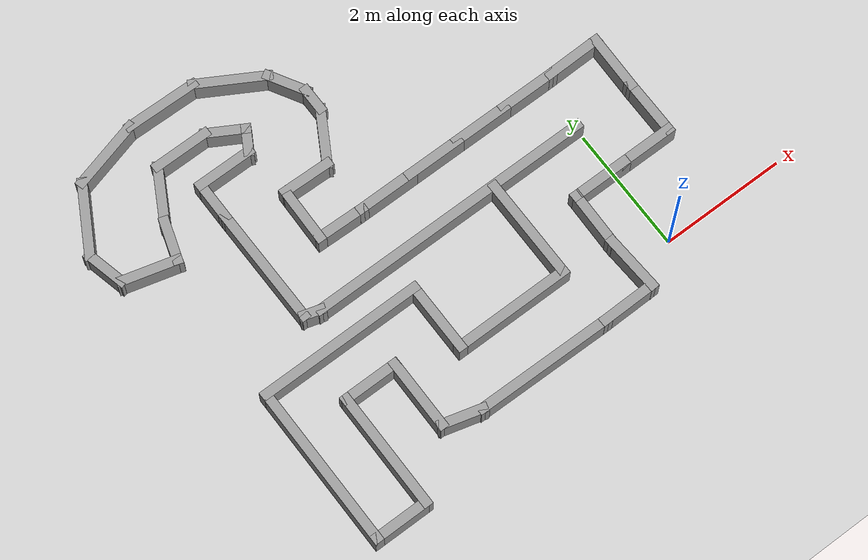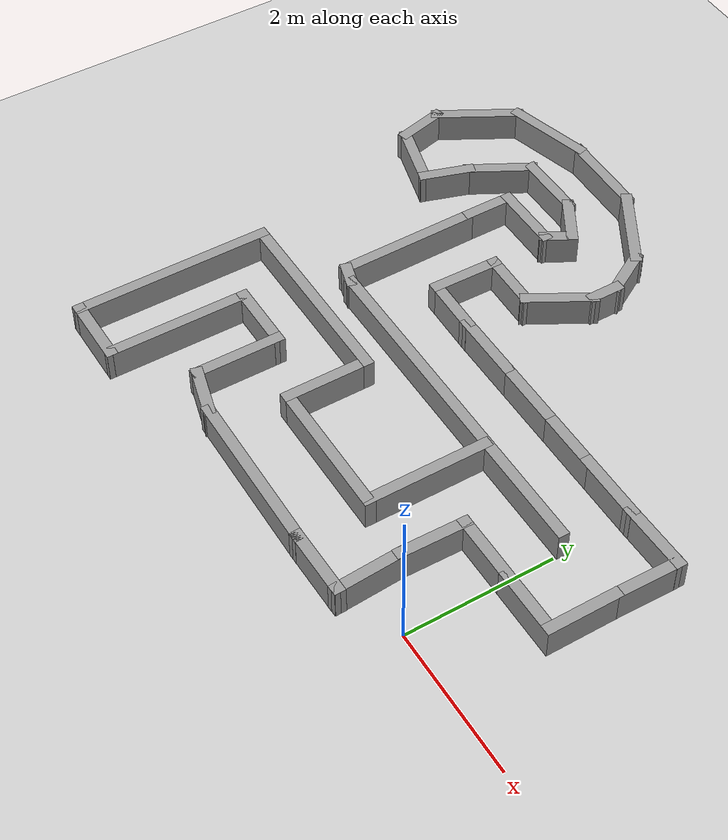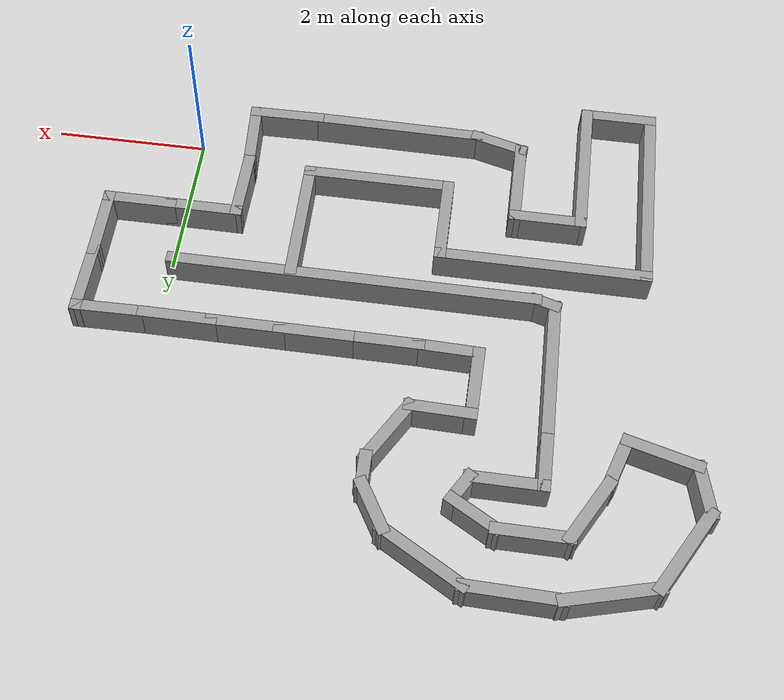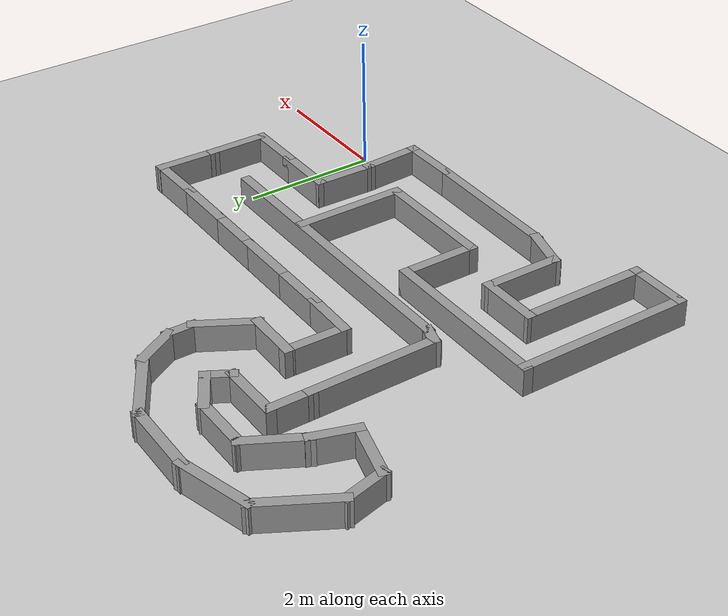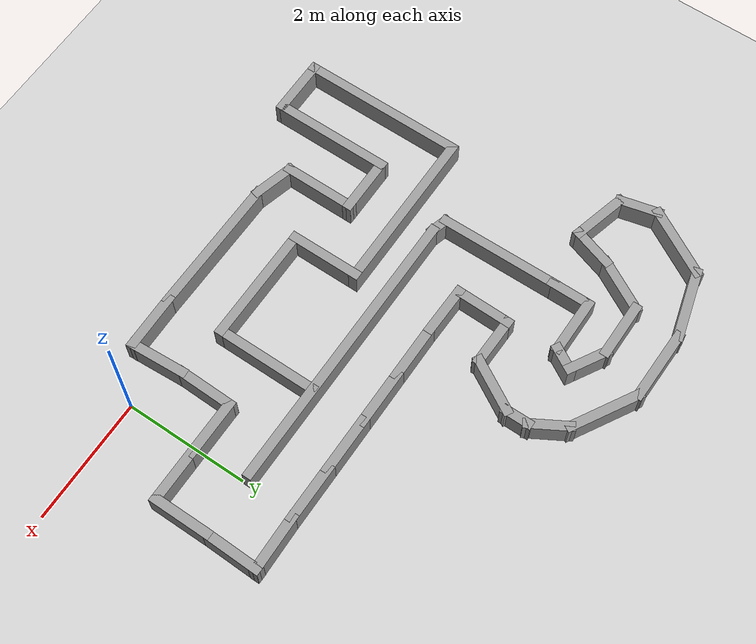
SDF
<sdf version="1.6">
 <world name="default">
  <scene><ambient>0.4 0.4 0.4 1</ambient><background>0.7 0.7 0.7 1</background><shadows>0</shadows></scene>
  <light name="sun" type="directional">
   <pose>0 0 10 0 -0 0</pose>
   <diffuse>0.8 0.8 0.8 1</diffuse>
   <specular>0.2 0.2 0.2 1</specular>
   <attenuation>
    <range>1000</range>
    <constant>0.9</constant>
    <linear>0.01</linear>
    <quadratic>0.001</quadratic>
   </attenuation>
   <direction>-0.5 0.1 -0.9</direction>
  </light>
  <model name="ground_plane">
   <static>1</static>
   <link name="link">
    <collision name="collision">
     <geometry><plane><normal>0 0 1</normal><size>100 100</size></plane></geometry>
     <surface>
      <contact><collide_bitmask>65535</collide_bitmask></contact>
      <friction><ode><mu>100</mu><mu2>50</mu2></ode></friction>
     </surface>
    </collision>
    <visual name="visual">
     <cast_shadows>0</cast_shadows>
     <geometry><plane><normal>0 0 1</normal><size>100 100</size></plane></geometry>
     <material>
      <script><uri>file://media/materials/scripts/gazebo.material</uri><name>Gazebo/Grey</name></script>
     </material>
    </visual>
   </link>
  </model>
  <physics name="default_physics" default="0" type="ode">
   <real_time_update_rate>1000</real_time_update_rate>
   <max_step_size>0.001</max_step_size>
   <real_time_factor>1</real_time_factor>
   <ode>
    <solver>
     <type>quick</type>
     <iters>150</iters>
     <precon_iters>0</precon_iters>
     <sor>1.4</sor>
     <use_dynamic_moi_rescaling>1</use_dynamic_moi_rescaling>
    </solver>
    <constraints>
     <cfm>1e-05</cfm>
     <erp>0.2</erp>
     <contact_max_correcting_vel>2000</contact_max_correcting_vel>
     <contact_surface_layer>0.01</contact_surface_layer>
    </constraints>
   </ode>
  </physics>
  <gravity>0 0 -9.8</gravity>
  <magnetic_field>6e-06 2.3e-05 -4.2e-05</magnetic_field>
  <atmosphere type="adiabatic"/>
  <audio><device>default</device></audio>
  <spherical_coordinates>
   <surface_model>EARTH_WGS84</surface_model>
   <latitude_deg>0</latitude_deg>
   <longitude_deg>0</longitude_deg>
   <elevation>0</elevation>
   <heading_deg>0</heading_deg>
  </spherical_coordinates>
  <model name="roberta_map1">
   <pose>-2.91784 2.49447 0 0 -0 0</pose>
   <link name="Wall_10">
    <collision name="Wall_10_Collision">
     <geometry><box><size>1.00119 0.15 0.4</size></box></geometry>
     <pose>0 0 0.2 0 -0 0</pose>
    </collision>
    <visual name="Wall_10_Visual">
     <pose>0 0 0.2 0 -0 0</pose>
     <geometry><box><size>1.00119 0.15 0.4</size></box></geometry>
     <material>
      <script><uri>file://media/materials/scripts/gazebo.material</uri><name>Gazebo/Grey</name></script>
      <ambient>1 1 1 1</ambient>
     </material>
     <meta><layer>0</layer></meta>
    </visual>
    <pose>2.20784 -2.50547 0 0 -0 1.62955</pose>
   </link>
   <link name="Wall_11">
    <collision name="Wall_11_Collision">
     <geometry><box><size>1 0.15 0.4</size></box></geometry>
     <pose>0 0 0.2 0 -0 0</pose>
    </collision>
    <visual name="Wall_11_Visual">
     <pose>0 0 0.2 0 -0 0</pose>
     <geometry><box><size>1 0.15 0.4</size></box></geometry>
     <material>
      <script><uri>file://media/materials/scripts/gazebo.material</uri><name>Gazebo/Grey</name></script>
      <ambient>1 1 1 1</ambient>
     </material>
     <meta><layer>0</layer></meta>
    </visual>
    <pose>2.19134 -1.65547 0 0 -0 1.5508</pose>
   </link>
   <link name="Wall_12">
    <collision name="Wall_12_Collision">
     <geometry><box><size>1.01672 0.15 0.4</size></box></geometry>
     <pose>0 0 0.2 0 -0 0</pose>
    </collision>
    <visual name="Wall_12_Visual">
     <pose>0 0 0.2 0 -0 0</pose>
     <geometry><box><size>1.01672 0.15 0.4</size></box></geometry>
     <material>
      <script><uri>file://media/materials/scripts/gazebo.material</uri><name>Gazebo/Grey</name></script>
      <ambient>1 1 1 1</ambient>
     </material>
     <meta><layer>0</layer></meta>
    </visual>
    <pose>2.63284 -1.23047 0 0 -0 0</pose>
   </link>
   <link name="Wall_13">
    <collision name="Wall_13_Collision">
     <geometry><box><size>0.967 0.15 0.4</size></box></geometry>
     <pose>0 0 0.2 0 -0 0</pose>
    </collision>
    <visual name="Wall_13_Visual">
     <pose>0 0 0.2 0 -0 0</pose>
     <geometry><box><size>0.967 0.15 0.4</size></box></geometry>
     <material>
      <script><uri>file://media/materials/scripts/gazebo.material</uri><name>Gazebo/Grey</name></script>
      <ambient>1 1 1 1</ambient>
     </material>
     <meta><layer>0</layer></meta>
    </visual>
    <pose>3.47434 -1.23047 0 0 -0 0</pose>
   </link>
   <link name="Wall_14">
    <collision name="Wall_14_Collision">
     <geometry><box><size>1.017 0.15 0.4</size></box></geometry>
     <pose>0 0 0.2 0 -0 0</pose>
    </collision>
    <visual name="Wall_14_Visual">
     <pose>0 0 0.2 0 -0 0</pose>
     <geometry><box><size>1.017 0.15 0.4</size></box></geometry>
     <material>
      <script><uri>file://media/materials/scripts/gazebo.material</uri><name>Gazebo/Grey</name></script>
      <ambient>1 1 1 1</ambient>
     </material>
     <meta><layer>0</layer></meta>
    </visual>
    <pose>3.88284 -0.796966 0 0 -0 1.5708</pose>
   </link>
   <link name="Wall_15">
    <collision name="Wall_15_Collision">
     <geometry><box><size>0.999905 0.15 0.4</size></box></geometry>
     <pose>0 0 0.2 0 -0 0</pose>
    </collision>
    <visual name="Wall_15_Visual">
     <pose>0 0 0.2 0 -0 0</pose>
     <geometry><box><size>0.999905 0.15 0.4</size></box></geometry>
     <material>
      <script><uri>file://media/materials/scripts/gazebo.material</uri><name>Gazebo/Grey</name></script>
      <ambient>1 1 1 1</ambient>
     </material>
     <meta><layer>0</layer></meta>
    </visual>
    <pose>3.89134 0.061034 0 0 -0 1.55078</pose>
   </link>
   <link name="Wall_16">
    <collision name="Wall_16_Collision">
     <geometry><box><size>1 0.15 0.4</size></box></geometry>
     <pose>0 0 0.2 0 -0 0</pose>
    </collision>
    <visual name="Wall_16_Visual">
     <pose>0 0 0.2 0 -0 0</pose>
     <geometry><box><size>1 0.15 0.4</size></box></geometry>
     <material>
      <script><uri>file://media/materials/scripts/gazebo.material</uri><name>Gazebo/Grey</name></script>
      <ambient>1 1 1 1</ambient>
     </material>
     <meta><layer>0</layer></meta>
    </visual>
    <pose>3.47484 0.477534 0 0 -0 -3.12277</pose>
   </link>
   <link name="Wall_17">
    <collision name="Wall_17_Collision">
     <geometry><box><size>1 0.15 0.4</size></box></geometry>
     <pose>0 0 0.2 0 -0 0</pose>
    </collision>
    <visual name="Wall_17_Visual">
     <pose>0 0 0.2 0 -0 0</pose>
     <geometry><box><size>1 0.15 0.4</size></box></geometry>
     <material>
      <script><uri>file://media/materials/scripts/gazebo.material</uri><name>Gazebo/Grey</name></script>
      <ambient>1 1 1 1</ambient>
     </material>
     <meta><layer>0</layer></meta>
    </visual>
    <pose>2.62484 0.469534 0 0 -0 3.14159</pose>
   </link>
   <link name="Wall_18">
    <collision name="Wall_18_Collision">
     <geometry><box><size>1 0.15 0.4</size></box></geometry>
     <pose>0 0 0.2 0 -0 0</pose>
    </collision>
    <visual name="Wall_18_Visual">
     <pose>0 0 0.2 0 -0 0</pose>
     <geometry><box><size>1 0.15 0.4</size></box></geometry>
     <material>
      <script><uri>file://media/materials/scripts/gazebo.material</uri><name>Gazebo/Grey</name></script>
      <ambient>1 1 1 1</ambient>
     </material>
     <meta><layer>0</layer></meta>
    </visual>
    <pose>1.77484 0.469534 0 0 -0 3.14159</pose>
   </link>
   <link name="Wall_19">
    <collision name="Wall_19_Collision">
     <geometry><box><size>1 0.15 0.4</size></box></geometry>
     <pose>0 0 0.2 0 -0 0</pose>
    </collision>
    <visual name="Wall_19_Visual">
     <pose>0 0 0.2 0 -0 0</pose>
     <geometry><box><size>1 0.15 0.4</size></box></geometry>
     <material>
      <script><uri>file://media/materials/scripts/gazebo.material</uri><name>Gazebo/Grey</name></script>
      <ambient>1 1 1 1</ambient>
     </material>
     <meta><layer>0</layer></meta>
    </visual>
    <pose>0.924837 0.469534 0 0 -0 3.14159</pose>
   </link>
   <link name="Wall_20">
    <collision name="Wall_20_Collision">
     <geometry><box><size>1.017 0.15 0.4</size></box></geometry>
     <pose>0 0 0.2 0 -0 0</pose>
    </collision>
    <visual name="Wall_20_Visual">
     <pose>0 0 0.2 0 -0 0</pose>
     <geometry><box><size>1.017 0.15 0.4</size></box></geometry>
     <material>
      <script><uri>file://media/materials/scripts/gazebo.material</uri><name>Gazebo/Grey</name></script>
      <ambient>1 1 1 1</ambient>
     </material>
     <meta><layer>0</layer></meta>
    </visual>
    <pose>0.066337 0.469534 0 0 -0 3.14159</pose>
   </link>
   <link name="Wall_21">
    <collision name="Wall_21_Collision">
     <geometry><box><size>0.883197 0.15 0.4</size></box></geometry>
     <pose>0 0 0.2 0 -0 0</pose>
    </collision>
    <visual name="Wall_21_Visual">
     <pose>0 0 0.2 0 -0 0</pose>
     <geometry><box><size>0.883197 0.15 0.4</size></box></geometry>
     <material>
      <script><uri>file://media/materials/scripts/gazebo.material</uri><name>Gazebo/Grey</name></script>
      <ambient>1 1 1 1</ambient>
     </material>
     <meta><layer>0</layer></meta>
    </visual>
    <pose>-0.733663 0.478034 0 0 -0 3.1184</pose>
   </link>
   <link name="Wall_22">
    <collision name="Wall_22_Collision">
     <geometry><box><size>0.999905 0.15 0.4</size></box></geometry>
     <pose>0 0 0.2 0 -0 0</pose>
    </collision>
    <visual name="Wall_22_Visual">
     <pose>0 0 0.2 0 -0 0</pose>
     <geometry><box><size>0.999905 0.15 0.4</size></box></geometry>
     <material>
      <script><uri>file://media/materials/scripts/gazebo.material</uri><name>Gazebo/Grey</name></script>
      <ambient>1 1 1 1</ambient>
     </material>
     <meta><layer>0</layer></meta>
    </visual>
    <pose>-1.09216 0.911034 0 0 -0 1.55195</pose>
   </link>
   <link name="Wall_23">
    <collision name="Wall_23_Collision">
     <geometry><box><size>0.883903 0.15 0.4</size></box></geometry>
     <pose>0 0 0.2 0 -0 0</pose>
    </collision>
    <visual name="Wall_23_Visual">
     <pose>0 0 0.2 0 -0 0</pose>
     <geometry><box><size>0.883903 0.15 0.4</size></box></geometry>
     <material>
      <script><uri>file://media/materials/scripts/gazebo.material</uri><name>Gazebo/Grey</name></script>
      <ambient>1 1 1 1</ambient>
     </material>
     <meta><layer>0</layer></meta>
    </visual>
    <pose>-0.717163 1.32753 0 0 -0 -0.021795</pose>
   </link>
   <link name="Wall_24">
    <collision name="Wall_24_Collision">
     <geometry><box><size>1 0.15 0.4</size></box></geometry>
     <pose>0 0 0.2 0 -0 0</pose>
    </collision>
    <visual name="Wall_24_Visual">
     <pose>0 0 0.2 0 -0 0</pose>
     <geometry><box><size>1 0.15 0.4</size></box></geometry>
     <material>
      <script><uri>file://media/materials/scripts/gazebo.material</uri><name>Gazebo/Grey</name></script>
      <ambient>1 1 1 1</ambient>
     </material>
     <meta><layer>0</layer></meta>
    </visual>
    <pose>-0.137663 1.68753 0 0 -0 1.04713</pose>
   </link>
   <link name="Wall_25">
    <collision name="Wall_25_Collision">
     <geometry><box><size>0.5 0.15 0.4</size></box></geometry>
     <pose>0 0 0.2 0 -0 0</pose>
    </collision>
    <visual name="Wall_25_Visual">
     <pose>0 0 0.2 0 -0 0</pose>
     <geometry><box><size>0.5 0.15 0.4</size></box></geometry>
     <material>
      <script><uri>file://media/materials/scripts/gazebo.material</uri><name>Gazebo/Grey</name></script>
      <ambient>1 1 1 1</ambient>
     </material>
     <meta><layer>0</layer></meta>
    </visual>
    <pose>0.074837 2.23053 0 0 -0 1.5708</pose>
   </link>
   <link name="Wall_26">
    <collision name="Wall_26_Collision">
     <geometry><box><size>0.75 0.15 0.4</size></box></geometry>
     <pose>0 0 0.2 0 -0 0</pose>
    </collision>
    <visual name="Wall_26_Visual">
     <pose>0 0 0.2 0 -0 0</pose>
     <geometry><box><size>0.75 0.15 0.4</size></box></geometry>
     <material>
      <script><uri>file://media/materials/scripts/gazebo.material</uri><name>Gazebo/Grey</name></script>
      <ambient>1 1 1 1</ambient>
     </material>
     <meta><layer>0</layer></meta>
    </visual>
    <pose>-0.075163 2.66503 0 0 -0 2.09491</pose>
   </link>
   <link name="Wall_27">
    <collision name="Wall_27_Collision">
     <geometry><box><size>1.25 0.15 0.4</size></box></geometry>
     <pose>0 0 0.2 0 -0 0</pose>
    </collision>
    <visual name="Wall_27_Visual">
     <pose>0 0 0.2 0 -0 0</pose>
     <geometry><box><size>1.25 0.15 0.4</size></box></geometry>
     <material>
      <script><uri>file://media/materials/scripts/gazebo.material</uri><name>Gazebo/Grey</name></script>
      <ambient>1 1 1 1</ambient>
     </material>
     <meta><layer>0</layer></meta>
    </visual>
    <pose>-0.701663 3.19953 0 0 -0 2.61816</pose>
   </link>
   <link name="Wall_28">
    <collision name="Wall_28_Collision">
     <geometry><box><size>1.25 0.15 0.4</size></box></geometry>
     <pose>0 0 0.2 0 -0 0</pose>
    </collision>
    <visual name="Wall_28_Visual">
     <pose>0 0 0.2 0 -0 0</pose>
     <geometry><box><size>1.25 0.15 0.4</size></box></geometry>
     <material>
      <script><uri>file://media/materials/scripts/gazebo.material</uri><name>Gazebo/Grey</name></script>
      <ambient>1 1 1 1</ambient>
     </material>
     <meta><layer>0</layer></meta>
    </visual>
    <pose>-1.72816 3.48303 0 0 -0 3.12614</pose>
   </link>
   <link name="Wall_29">
    <collision name="Wall_29_Collision">
     <geometry><box><size>1.23317 0.15 0.4</size></box></geometry>
     <pose>0 0 0.2 0 -0 0</pose>
    </collision>
    <visual name="Wall_29_Visual">
     <pose>0 0 0.2 0 -0 0</pose>
     <geometry><box><size>1.23317 0.15 0.4</size></box></geometry>
     <material>
      <script><uri>file://media/materials/scripts/gazebo.material</uri><name>Gazebo/Grey</name></script>
      <ambient>1 1 1 1</ambient>
     </material>
     <meta><layer>0</layer></meta>
    </visual>
    <pose>-2.80066 3.34903 0 0 -0 -2.87534</pose>
   </link>
   <link name="Wall_30">
    <collision name="Wall_30_Collision">
     <geometry><box><size>1.26429 0.15 0.4</size></box></geometry>
     <pose>0 0 0.2 0 -0 0</pose>
    </collision>
    <visual name="Wall_30_Visual">
     <pose>0 0 0.2 0 -0 0</pose>
     <geometry><box><size>1.26429 0.15 0.4</size></box></geometry>
     <material>
      <script><uri>file://media/materials/scripts/gazebo.material</uri><name>Gazebo/Grey</name></script>
      <ambient>1 1 1 1</ambient>
     </material>
     <meta><layer>0</layer></meta>
    </visual>
    <pose>-3.59866 2.72203 0 0 -0 -2.08783</pose>
   </link>
   <link name="Wall_31">
    <collision name="Wall_31_Collision">
     <geometry><box><size>0.745816 0.15 0.4</size></box></geometry>
     <pose>0 0 0.2 0 -0 0</pose>
    </collision>
    <visual name="Wall_31_Visual">
     <pose>0 0 0.2 0 -0 0</pose>
     <geometry><box><size>0.745816 0.15 0.4</size></box></geometry>
     <material>
      <script><uri>file://media/materials/scripts/gazebo.material</uri><name>Gazebo/Grey</name></script>
      <ambient>1 1 1 1</ambient>
     </material>
     <meta><layer>0</layer></meta>
    </visual>
    <pose>-3.80466 1.94803 0 0 -0 -1.33519</pose>
   </link>
   <link name="Wall_32">
    <collision name="Wall_32_Collision">
     <geometry><box><size>1 0.15 0.4</size></box></geometry>
     <pose>0 0 0.2 0 -0 0</pose>
    </collision>
    <visual name="Wall_32_Visual">
     <pose>0 0 0.2 0 -0 0</pose>
     <geometry><box><size>1 0.15 0.4</size></box></geometry>
     <material>
      <script><uri>file://media/materials/scripts/gazebo.material</uri><name>Gazebo/Grey</name></script>
      <ambient>1 1 1 1</ambient>
     </material>
     <meta><layer>0</layer></meta>
    </visual>
    <pose>-3.32466 1.54853 0 0 -0 -0.261815</pose>
   </link>
   <link name="Wall_33">
    <collision name="Wall_33_Collision">
     <geometry><box><size>0.759066 0.15 0.4</size></box></geometry>
     <pose>0 0 0.2 0 -0 0</pose>
    </collision>
    <visual name="Wall_33_Visual">
     <pose>0 0 0.2 0 -0 0</pose>
     <geometry><box><size>0.759066 0.15 0.4</size></box></geometry>
     <material>
      <script><uri>file://media/materials/scripts/gazebo.material</uri><name>Gazebo/Grey</name></script>
      <ambient>1 1 1 1</ambient>
     </material>
     <meta><layer>0</layer></meta>
    </visual>
    <pose>-2.81966 1.72803 0 0 -0 1.25528</pose>
   </link>
   <link name="Wall_34">
    <collision name="Wall_34_Collision">
     <geometry><box><size>0.991857 0.15 0.4</size></box></geometry>
     <pose>0 0 0.2 0 -0 0</pose>
    </collision>
    <visual name="Wall_34_Visual">
     <pose>0 0 0.2 0 -0 0</pose>
     <geometry><box><size>0.991857 0.15 0.4</size></box></geometry>
     <material>
      <script><uri>file://media/materials/scripts/gazebo.material</uri><name>Gazebo/Grey</name></script>
      <ambient>1 1 1 1</ambient>
     </material>
     <meta><layer>0</layer></meta>
    </visual>
    <pose>-2.52116 2.38553 0 0 -0 1.06462</pose>
   </link>
   <link name="Wall_35">
    <collision name="Wall_35_Collision">
     <geometry><box><size>0.983197 0.15 0.4</size></box></geometry>
     <pose>0 0 0.2 0 -0 0</pose>
    </collision>
    <visual name="Wall_35_Visual">
     <pose>0 0 0.2 0 -0 0</pose>
     <geometry><box><size>0.983197 0.15 0.4</size></box></geometry>
     <material>
      <script><uri>file://media/materials/scripts/gazebo.material</uri><name>Gazebo/Grey</name></script>
      <ambient>1 1 1 1</ambient>
     </material>
     <meta><layer>0</layer></meta>
    </visual>
    <pose>-1.90066 2.75353 0 0 -0 0</pose>
   </link>
   <link name="Wall_36">
    <collision name="Wall_36_Collision">
     <geometry><box><size>0.75 0.15 0.4</size></box></geometry>
     <pose>0 0 0.2 0 -0 0</pose>
    </collision>
    <visual name="Wall_36_Visual">
     <pose>0 0 0.2 0 -0 0</pose>
     <geometry><box><size>0.75 0.15 0.4</size></box></geometry>
     <material>
      <script><uri>file://media/materials/scripts/gazebo.material</uri><name>Gazebo/Grey</name></script>
      <ambient>1 1 1 1</ambient>
     </material>
     <meta><layer>0</layer></meta>
    </visual>
    <pose>-1.22416 2.60353 0 0 -0 -0.523278</pose>
   </link>
   <link name="Wall_37">
    <collision name="Wall_37_Collision">
     <geometry><box><size>0.5 0.15 0.4</size></box></geometry>
     <pose>0 0 0.2 0 -0 0</pose>
    </collision>
    <visual name="Wall_37_Visual">
     <pose>0 0 0.2 0 -0 0</pose>
     <geometry><box><size>0.5 0.15 0.4</size></box></geometry>
     <material>
      <script><uri>file://media/materials/scripts/gazebo.material</uri><name>Gazebo/Grey</name></script>
      <ambient>1 1 1 1</ambient>
     </material>
     <meta><layer>0</layer></meta>
    </visual>
    <pose>-1.05166 2.30203 0 0 -0 -2.09455</pose>
   </link>
   <link name="Wall_38">
    <collision name="Wall_38_Collision">
     <geometry><box><size>1 0.15 0.4</size></box></geometry>
     <pose>0 0 0.2 0 -0 0</pose>
    </collision>
    <visual name="Wall_38_Visual">
     <pose>0 0 0.2 0 -0 0</pose>
     <geometry><box><size>1 0.15 0.4</size></box></geometry>
     <material>
      <script><uri>file://media/materials/scripts/gazebo.material</uri><name>Gazebo/Grey</name></script>
      <ambient>1 1 1 1</ambient>
     </material>
     <meta><layer>0</layer></meta>
    </visual>
    <pose>-1.56416 2.15053 0 0 -0 3.14159</pose>
   </link>
   <link name="Wall_39">
    <collision name="Wall_39_Collision">
     <geometry><box><size>0.75 0.15 0.4</size></box></geometry>
     <pose>0 0 0.2 0 -0 0</pose>
    </collision>
    <visual name="Wall_39_Visual">
     <pose>0 0 0.2 0 -0 0</pose>
     <geometry><box><size>0.75 0.15 0.4</size></box></geometry>
     <material>
      <script><uri>file://media/materials/scripts/gazebo.material</uri><name>Gazebo/Grey</name></script>
      <ambient>1 1 1 1</ambient>
     </material>
     <meta><layer>0</layer></meta>
    </visual>
    <pose>-1.98916 1.85053 0 0 -0 -1.5708</pose>
   </link>
   <link name="Wall_40">
    <collision name="Wall_40_Collision">
     <geometry><box><size>2.01667 0.15 0.4</size></box></geometry>
     <pose>0 0 0.2 0 -0 0</pose>
    </collision>
    <visual name="Wall_40_Visual">
     <pose>0 0 0.2 0 -0 0</pose>
     <geometry><box><size>2.01667 0.15 0.4</size></box></geometry>
     <material>
      <script><uri>file://media/materials/scripts/gazebo.material</uri><name>Gazebo/Grey</name></script>
      <ambient>1 1 1 1</ambient>
     </material>
     <meta><layer>0</layer></meta>
    </visual>
    <pose>-1.98066 0.617034 0 0 -0 -1.56169</pose>
   </link>
   <link name="Wall_41">
    <collision name="Wall_41_Collision">
     <geometry><box><size>0.399833 0.15 0.4</size></box></geometry>
     <pose>0 0 0.2 0 -0 0</pose>
    </collision>
    <visual name="Wall_41_Visual">
     <pose>0 0 0.2 0 -0 0</pose>
     <geometry><box><size>0.399833 0.15 0.4</size></box></geometry>
     <material>
      <script><uri>file://media/materials/scripts/gazebo.material</uri><name>Gazebo/Grey</name></script>
      <ambient>1 1 1 1</ambient>
     </material>
     <meta><layer>0</layer></meta>
    </visual>
    <pose>-1.85266 -0.351466 0 0 -0 -0.284918</pose>
   </link>
   <link name="Wall_42">
    <collision name="Wall_42_Collision">
     <geometry><box><size>4.75 0.15 0.4</size></box></geometry>
     <pose>0 0 0.2 0 -0 0</pose>
    </collision>
    <visual name="Wall_42_Visual">
     <pose>0 0 0.2 0 -0 0</pose>
     <geometry><box><size>4.75 0.15 0.4</size></box></geometry>
     <material>
      <script><uri>file://media/materials/scripts/gazebo.material</uri><name>Gazebo/Grey</name></script>
      <ambient>1 1 1 1</ambient>
     </material>
     <meta><layer>0</layer></meta>
    </visual>
    <pose>0.566971 -0.386697 0 0 -0 -0.000101</pose>
   </link>
   <link name="Wall_44">
    <collision name="Wall_44_Collision">
     <geometry><box><size>1.75 0.15 0.4</size></box></geometry>
     <pose>0 0 0.2 0 -0 0</pose>
    </collision>
    <visual name="Wall_44_Visual">
     <pose>0 0 0.2 0 -0 0</pose>
     <geometry><box><size>1.75 0.15 0.4</size></box></geometry>
     <material>
      <script><uri>file://media/materials/scripts/gazebo.material</uri><name>Gazebo/Grey</name></script>
      <ambient>1 1 1 1</ambient>
     </material>
     <meta><layer>0</layer></meta>
    </visual>
    <pose>1.35084 -1.20847 0 0 -0 -1.5708</pose>
   </link>
   <link name="Wall_45">
    <collision name="Wall_45_Collision">
     <geometry><box><size>1.98306 0.15 0.4</size></box></geometry>
     <pose>0 0 0.2 0 -0 0</pose>
    </collision>
    <visual name="Wall_45_Visual">
     <pose>0 0 0.2 0 -0 0</pose>
     <geometry><box><size>1.98306 0.15 0.4</size></box></geometry>
     <material>
      <script><uri>file://media/materials/scripts/gazebo.material</uri><name>Gazebo/Grey</name></script>
      <ambient>1 1 1 1</ambient>
     </material>
     <meta><layer>0</layer></meta>
    </visual>
    <pose>0.434337 -2.00847 0 0 -0 3.14159</pose>
   </link>
   <link name="Wall_46">
    <collision name="Wall_46_Collision">
     <geometry><box><size>1.233 0.15 0.4</size></box></geometry>
     <pose>0 0 0.2 0 -0 0</pose>
    </collision>
    <visual name="Wall_46_Visual">
     <pose>0 0 0.2 0 -0 0</pose>
     <geometry><box><size>1.233 0.15 0.4</size></box></geometry>
     <material>
      <script><uri>file://media/materials/scripts/gazebo.material</uri><name>Gazebo/Grey</name></script>
      <ambient>1 1 1 1</ambient>
     </material>
     <meta><layer>0</layer></meta>
    </visual>
    <pose>-0.482164 -1.46697 0 0 -0 1.5708</pose>
   </link>
   <link name="Wall_47">
    <collision name="Wall_47_Collision">
     <geometry><box><size>2.75 0.15 0.4</size></box></geometry>
     <pose>0 0 0.2 0 -0 0</pose>
    </collision>
    <visual name="Wall_47_Visual">
     <pose>0 0 0.2 0 -0 0</pose>
     <geometry><box><size>2.75 0.15 0.4</size></box></geometry>
     <material>
      <script><uri>file://media/materials/scripts/gazebo.material</uri><name>Gazebo/Grey</name></script>
      <ambient>1 1 1 1</ambient>
     </material>
     <meta><layer>0</layer></meta>
    </visual>
    <pose>-1.78216 -0.925466 0 0 -0 3.14159</pose>
   </link>
   <link name="Wall_48">
    <collision name="Wall_48_Collision">
     <geometry><box><size>2.733 0.15 0.4</size></box></geometry>
     <pose>0 0 0.2 0 -0 0</pose>
    </collision>
    <visual name="Wall_48_Visual">
     <pose>0 0 0.2 0 -0 0</pose>
     <geometry><box><size>2.733 0.15 0.4</size></box></geometry>
     <material>
      <script><uri>file://media/materials/scripts/gazebo.material</uri><name>Gazebo/Grey</name></script>
      <ambient>1 1 1 1</ambient>
     </material>
     <meta><layer>0</layer></meta>
    </visual>
    <pose>-3.08216 -2.21697 0 0 -0 -1.5708</pose>
   </link>
   <link name="Wall_49">
    <collision name="Wall_49_Collision">
     <geometry><box><size>1 0.15 0.4</size></box></geometry>
     <pose>0 0 0.2 0 -0 0</pose>
    </collision>
    <visual name="Wall_49_Visual">
     <pose>0 0 0.2 0 -0 0</pose>
     <geometry><box><size>1 0.15 0.4</size></box></geometry>
     <material>
      <script><uri>file://media/materials/scripts/gazebo.material</uri><name>Gazebo/Grey</name></script>
      <ambient>1 1 1 1</ambient>
     </material>
     <meta><layer>0</layer></meta>
    </visual>
    <pose>-2.65716 -3.50847 0 0 -0 0</pose>
   </link>
   <link name="Wall_50">
    <collision name="Wall_50_Collision">
     <geometry><box><size>2 0.15 0.4</size></box></geometry>
     <pose>0 0 0.2 0 -0 0</pose>
    </collision>
    <visual name="Wall_50_Visual">
     <pose>0 0 0.2 0 -0 0</pose>
     <geometry><box><size>2 0.15 0.4</size></box></geometry>
     <material>
      <script><uri>file://media/materials/scripts/gazebo.material</uri><name>Gazebo/Grey</name></script>
      <ambient>1 1 1 1</ambient>
     </material>
     <meta><layer>0</layer></meta>
    </visual>
    <pose>-2.23016 -2.58347 0 0 -0 1.56863</pose>
   </link>
   <link name="Wall_51">
    <collision name="Wall_51_Collision">
     <geometry><box><size>0.99994 0.15 0.4</size></box></geometry>
     <pose>0 0 0.2 0 -0 0</pose>
    </collision>
    <visual name="Wall_51_Visual">
     <pose>0 0 0.2 0 -0 0</pose>
     <geometry><box><size>0.99994 0.15 0.4</size></box></geometry>
     <material>
      <script><uri>file://media/materials/scripts/gazebo.material</uri><name>Gazebo/Grey</name></script>
      <ambient>1 1 1 1</ambient>
     </material>
     <meta><layer>0</layer></meta>
    </visual>
    <pose>-1.80316 -1.65847 0 0 -0 0</pose>
   </link>
   <link name="Wall_52">
    <collision name="Wall_52_Collision">
     <geometry><box><size>1.25001 0.15 0.4</size></box></geometry>
     <pose>0 0 0.2 0 -0 0</pose>
    </collision>
    <visual name="Wall_52_Visual">
     <pose>0 0 0.2 0 -0 0</pose>
     <geometry><box><size>1.25001 0.15 0.4</size></box></geometry>
     <material>
      <script><uri>file://media/materials/scripts/gazebo.material</uri><name>Gazebo/Grey</name></script>
      <ambient>1 1 1 1</ambient>
     </material>
     <meta><layer>0</layer></meta>
    </visual>
    <pose>-1.38016 -2.20847 0 0 -0 -1.57443</pose>
   </link>
   <link name="Wall_53">
    <collision name="Wall_53_Collision">
     <geometry><box><size>0.767363 0.15 0.4</size></box></geometry>
     <pose>0 0 0.2 0 -0 0</pose>
    </collision>
    <visual name="Wall_53_Visual">
     <pose>0 0 0.2 0 -0 0</pose>
     <geometry><box><size>0.767363 0.15 0.4</size></box></geometry>
     <material>
      <script><uri>file://media/materials/scripts/gazebo.material</uri><name>Gazebo/Grey</name></script>
      <ambient>1 1 1 1</ambient>
     </material>
     <meta><layer>0</layer></meta>
    </visual>
    <pose>-1.08416 -2.83897 0 0 -0 -0.263837</pose>
   </link>
   <link name="Wall_54">
    <collision name="Wall_54_Collision">
     <geometry><box><size>2.31911 0.15 0.4</size></box></geometry>
     <pose>0 0 0.2 0 -0 0</pose>
    </collision>
    <visual name="Wall_54_Visual">
     <pose>0 0 0.2 0 -0 0</pose>
     <geometry><box><size>2.31911 0.15 0.4</size></box></geometry>
     <material>
      <script><uri>file://media/materials/scripts/gazebo.material</uri><name>Gazebo/Grey</name></script>
      <ambient>1 1 1 1</ambient>
     </material>
     <meta><layer>0</layer></meta>
    </visual>
    <pose>0.298337 -2.93047 0 0 -0 -0.010143</pose>
   </link>
   <link name="Wall_9">
    <collision name="Wall_9_Collision">
     <geometry><box><size>1.00007 0.15 0.4</size></box></geometry>
     <pose>0 0 0.2 0 -0 0</pose>
    </collision>
    <visual name="Wall_9_Visual">
     <pose>0 0 0.2 0 -0 0</pose>
     <geometry><box><size>1.00007 0.15 0.4</size></box></geometry>
     <material>
      <script><uri>file://media/materials/scripts/gazebo.material</uri><name>Gazebo/Grey</name></script>
      <ambient>1 1 1 1</ambient>
     </material>
     <meta><layer>0</layer></meta>
    </visual>
    <pose>1.80784 -2.93597 0 0 -0 0.01294</pose>
   </link>
   <static>1</static>
  </model>
 </world>
</sdf>
